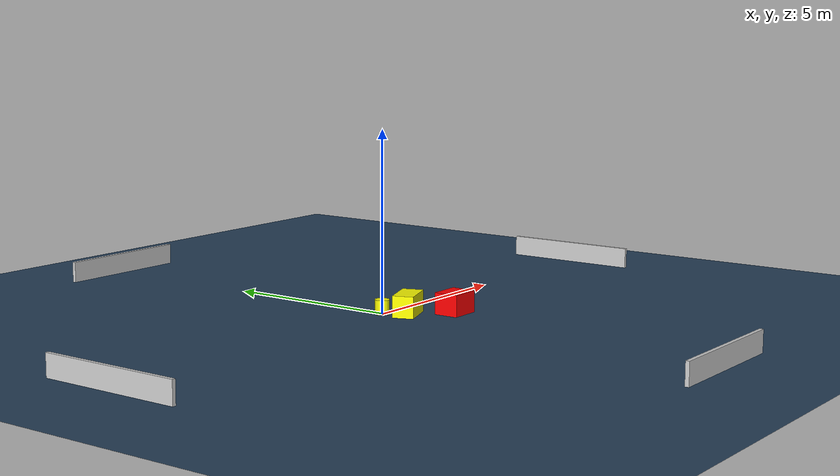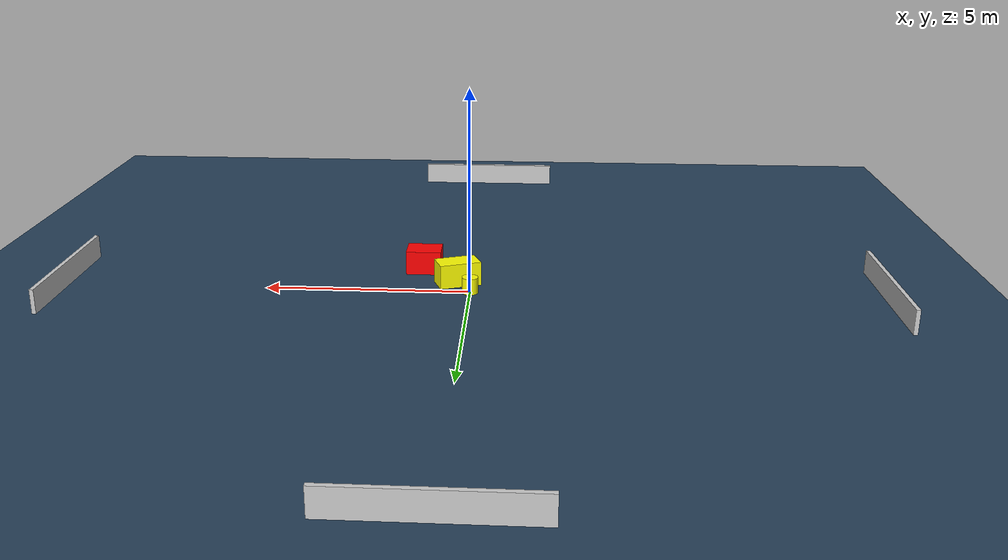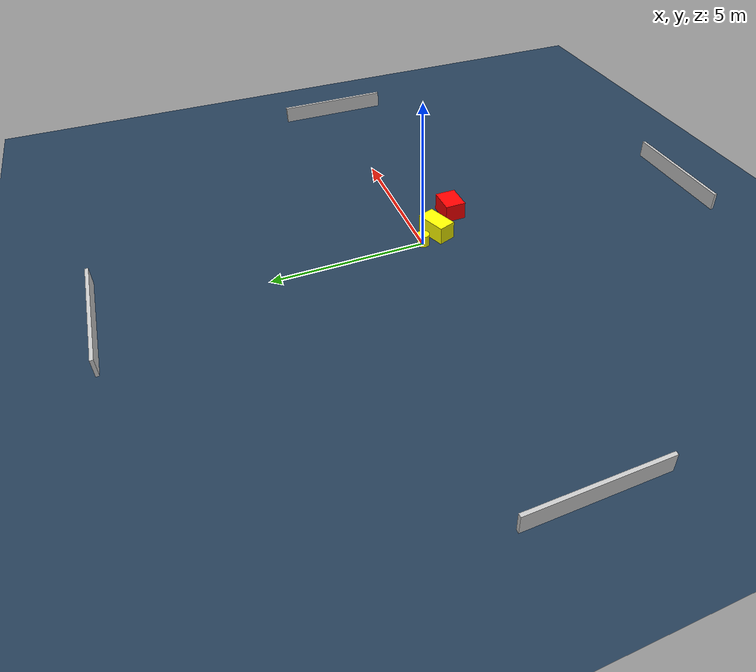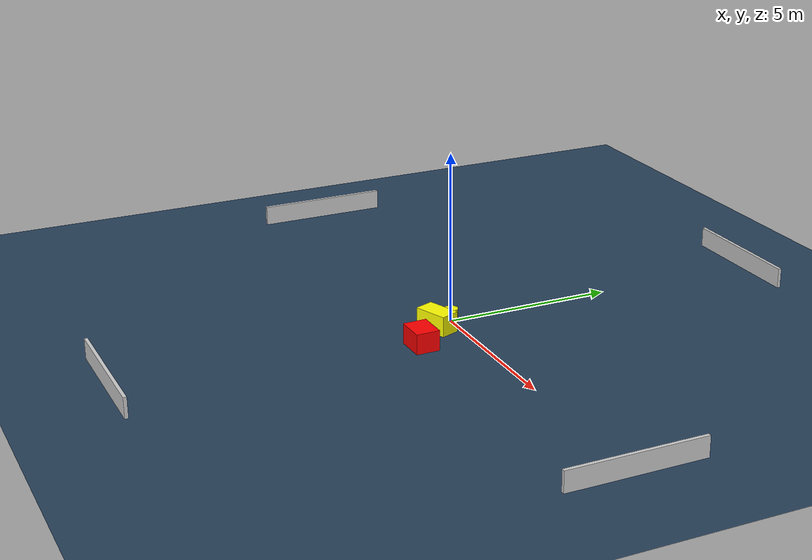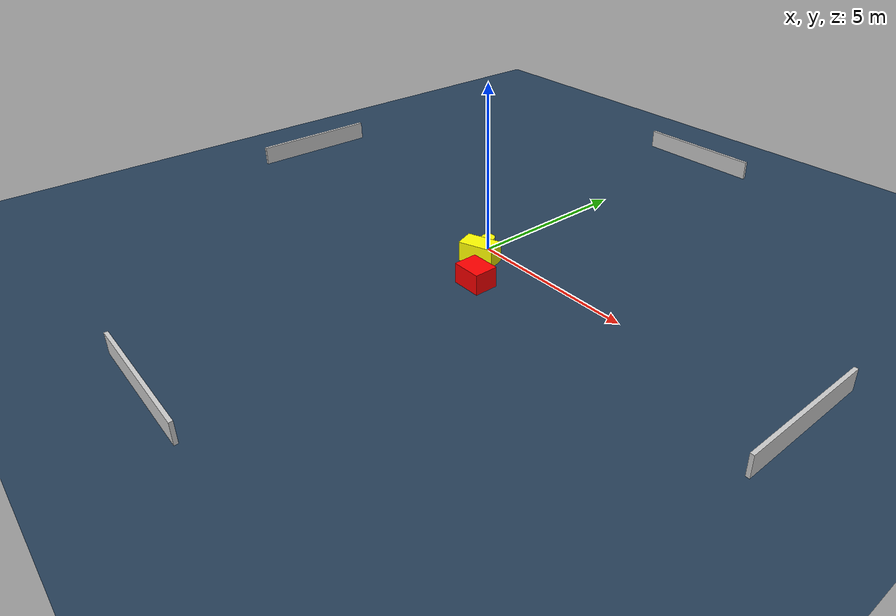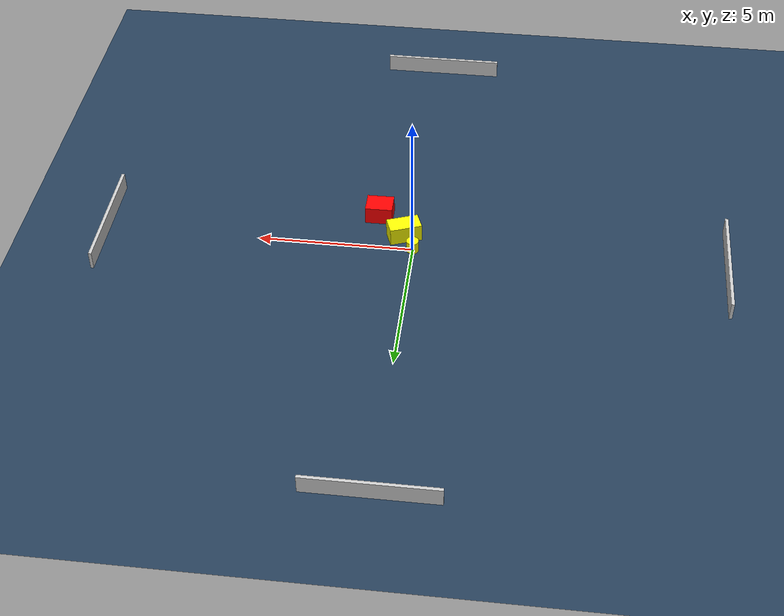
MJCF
<?xml version="1.0" ?>
<mujoco model="generated_environment">
  <option timestep="0.01" integrator="RK4" cone="elliptic"/>
  <default>
    <geom density="1"/>
  </default>
  <asset>
    <texture builtin="gradient" height="3072" name="skybox" rgb1="0.3 0.5 0.7" rgb2="0 0 0" type="skybox" width="512"/>
    <texture builtin="checker" height="300" name="groundplane" rgb1="0.2 0.3 0.4" rgb2="0.1 0.2 0.3" type="2d" width="300"/>
    <material name="groundplane" reflectance="0.2" texrepeat="5 5" texture="groundplane"/>
  </asset>
  <worldbody>
    <light dir="0 0 -1" directional="true" pos="0 0 1.5"/>
    <geom condim="3" friction="0.5 0.005 0.001" material="groundplane" name="floor" pos="0 0 0" size="0 0 0.05" type="plane"/>
    <body name="walls">
      <geom name="wall_1" condim="4" pos="-10.0 0.0 0.3" rgba="0.800000011920929 0.800000011920929 0.800000011920929 1.0" size="0.05 2.0 0.3" type="box"/>
      <geom name="wall_2" condim="4" pos="10.0 0.0 0.3" rgba="0.800000011920929 0.800000011920929 0.800000011920929 1.0" size="0.05 2.0 0.3" type="box"/>
      <geom name="wall_3" condim="4" pos="0.0 -10.0 0.3" rgba="0.800000011920929 0.800000011920929 0.800000011920929 1.0" size="2.0 0.05 0.3" type="box"/>
      <geom name="wall_4" condim="4" pos="0.0 10.0 0.3" rgba="0.800000011920929 0.800000011920929 0.800000011920929 1.0" size="2.0 0.05 0.3" type="box"/>
    </body>
    <body name="robot">
      <joint name="joint_x" type="slide" pos="0 0 0" axis="1 0 0"/>
      <joint name="joint_y" type="slide" pos="0 0 0" axis="0 1 0"/>
      <geom name="robot" type="cylinder" pos="0.0 0.0 0.2" size="0.2 0.2 0.0" mass="5.0" friction="1.0 0.005 0.0001" condim="4" rgba="1.0 1.0 0.0 1.0"/>
    </body>
    <body name="obstacle_1_movable">
      <geom name="obstacle_1_movable" condim="4" pos="0.3459748387351202 -0.6070350740118707 0.3" euler="0 0 200.60703010952562" friction="0.0 0.005 0.001" rgba="1.0 1.0 0.0 1.0" size="0.5202431745144788 0.2900945988751807 0.3" type="box" mass="0.1"/>
      <joint type="free"/>
    </body>
    <body name="obstacle_2_static">
      <geom name="obstacle_2_static" condim="4" pos="1.2531141895424984 -1.5129746701468725 0.3" euler="0 0 0.5784694127993806" friction="0.0 0.005 0.001" rgba="1.0 0.0 0.0 1.0" size="0.4406186788464816 0.3484075558302182 0.3" type="box"/>
    </body>
  </worldbody>
  <actuator>
    <motor name="actuator_x" joint="joint_x" gear="1" ctrlrange="-1 1"/>
    <motor name="actuator_y" joint="joint_y" gear="1" ctrlrange="-1 1"/>
  </actuator>
</mujoco>
